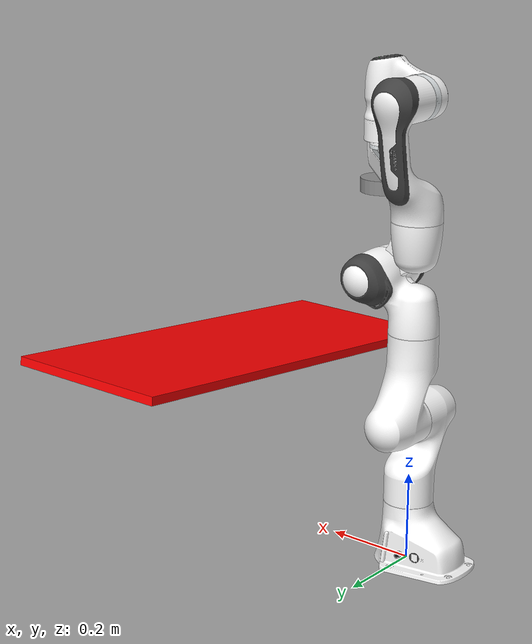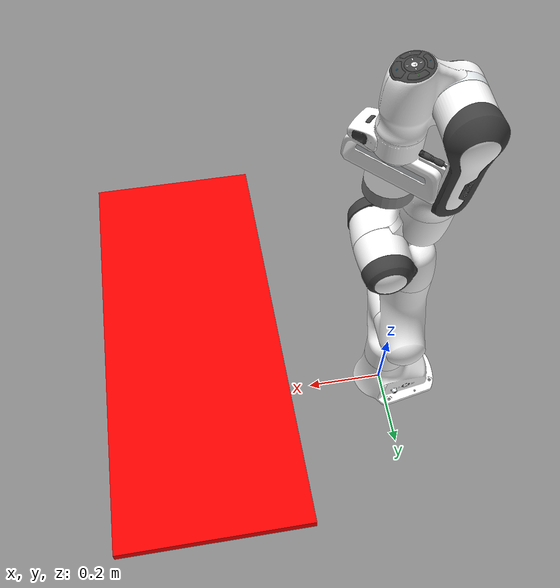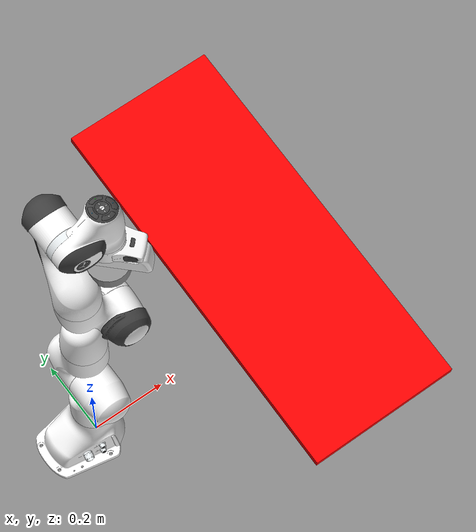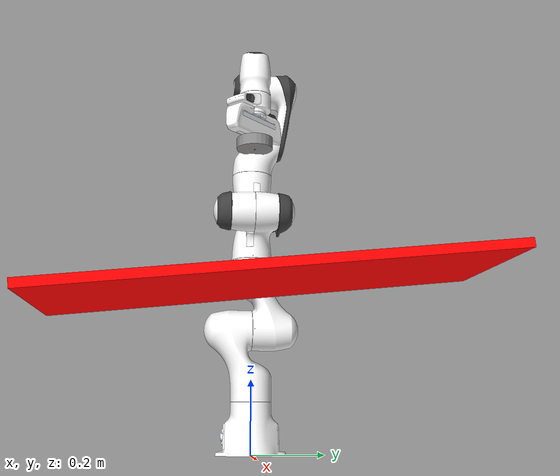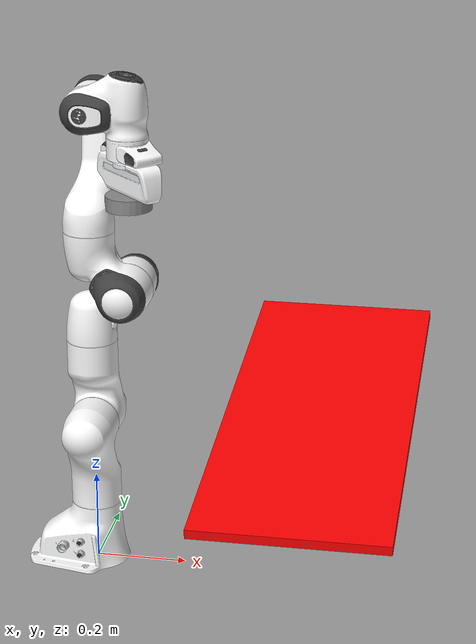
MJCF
<mujoco model="panda_grinder">
  <compiler angle="radian" meshdir="assets" autolimits="true"/>

  <visual>
    <global offwidth="1920" offheight="1080" />
    <map force="0.5"/>
    <scale forcewidth="0.05"/>
  </visual>

  <option integrator="implicit" noslip_iterations="1"/>

  <default>
    <default class="panda">
      <material specular="0.5" shininess="0.25"/>
      <joint armature="0.1" damping="0.1" axis="0 0 1" range="-6.283185 6.283185"/>
      <general dyntype="none" biastype="affine" ctrlrange="-6.283185 6.283185" forcerange="-87 87"/>

      <default class="visual">
        <geom type="mesh" contype="0" conaffinity="0" group="2"/>
      </default>
      <default class="collision">
        <geom type="mesh" group="3"/>
      </default>
    </default>
  </default>

  <asset>
    <material class="panda" name="white" rgba="1 1 1 1"/>
    <material class="panda" name="off_white" rgba="0.901961 0.921569 0.929412 1"/>
    <material class="panda" name="black" rgba="0.25 0.25 0.25 1"/>
    <material class="panda" name="green" rgba="0 1 0 1"/>
    <material class="panda" name="light_blue" rgba="0.039216 0.541176 0.780392 1"/>

    <!-- Collision meshes -->
    <mesh name="link0_c" file="link0.stl"/>
    <mesh name="link1_c" file="link1.stl"/>
    <mesh name="link2_c" file="link2.stl"/>
    <mesh name="link3_c" file="link3.stl"/>
    <mesh name="link4_c" file="link4.stl"/>
    <mesh name="link5_c0" file="link5_collision_0.obj"/>
    <mesh name="link5_c1" file="link5_collision_1.obj"/>
    <mesh name="link5_c2" file="link5_collision_2.obj"/>
    <mesh name="link6_c" file="link6.stl"/>
    <mesh name="link7_c" file="link7.stl"/>
    <mesh name="hand_c" file="hand.stl"/>

    <!-- Visual meshes -->
    <mesh file="link0_0.obj"/>
    <mesh file="link0_1.obj"/>
    <mesh file="link0_2.obj"/>
    <mesh file="link0_3.obj"/>
    <mesh file="link0_4.obj"/>
    <mesh file="link0_5.obj"/>
    <mesh file="link0_7.obj"/>
    <mesh file="link0_8.obj"/>
    <mesh file="link0_9.obj"/>
    <mesh file="link0_10.obj"/>
    <mesh file="link0_11.obj"/>
    <mesh file="link1.obj"/>
    <mesh file="link2.obj"/>
    <mesh file="link3_0.obj"/>
    <mesh file="link3_1.obj"/>
    <mesh file="link3_2.obj"/>
    <mesh file="link3_3.obj"/>
    <mesh file="link4_0.obj"/>
    <mesh file="link4_1.obj"/>
    <mesh file="link4_2.obj"/>
    <mesh file="link4_3.obj"/>
    <mesh file="link5_0.obj"/>
    <mesh file="link5_1.obj"/>
    <mesh file="link5_2.obj"/>
    <mesh file="link6_0.obj"/>
    <mesh file="link6_1.obj"/>
    <mesh file="link6_2.obj"/>
    <mesh file="link6_3.obj"/>
    <mesh file="link6_4.obj"/>
    <mesh file="link6_5.obj"/>
    <mesh file="link6_6.obj"/>
    <mesh file="link6_7.obj"/>
    <mesh file="link6_8.obj"/>
    <mesh file="link6_9.obj"/>
    <mesh file="link6_10.obj"/>
    <mesh file="link6_11.obj"/>
    <mesh file="link6_12.obj"/>
    <mesh file="link6_13.obj"/>
    <mesh file="link6_14.obj"/>
    <mesh file="link6_15.obj"/>
    <mesh file="link6_16.obj"/>
    <mesh file="link7_0.obj"/>
    <mesh file="link7_1.obj"/>
    <mesh file="link7_2.obj"/>
    <mesh file="link7_3.obj"/>35
    <mesh file="link7_4.obj"/>
    <mesh file="link7_5.obj"/>
    <mesh file="link7_6.obj"/>
    <mesh file="link7_7.obj"/>
    <mesh file="hand_0.obj"/>
    <mesh file="hand_1.obj"/>
    <mesh file="hand_2.obj"/>
    <mesh file="hand_3.obj"/>
    <mesh file="hand_4.obj"/>
  </asset>

  <worldbody>
    <light name="top" pos="0 0 2" mode="trackcom"/>
    <!-- A simple collision geometry for testing -->
    <geom name="red_box" type="box" pos="0.5 0.0 .39" axisangle="1 0 0 0.1" size=".2 .5 .01" rgba="1 0 0 1" condim="1"/>

    <body name="panda_link0" childclass="panda">
      <inertial mass="0.629769" pos="-0.041018 -0.00014 0.049974" fullinertia="0.00315 0.00388 0.004285 8.2904e-7 0.00015 8.2299e-6"/>
      <geom mesh="link0_0" material="off_white" class="visual"/>
      <geom mesh="link0_1" material="black" class="visual"/>
      <geom mesh="link0_2" material="off_white" class="visual"/>
      <geom mesh="link0_3" material="black" class="visual"/>
      <geom mesh="link0_4" material="off_white" class="visual"/>
      <geom mesh="link0_5" material="black" class="visual"/>
      <geom mesh="link0_7" material="white" class="visual"/>
      <geom mesh="link0_8" material="white" class="visual"/>
      <geom mesh="link0_9" material="black" class="visual"/>
      <geom mesh="link0_10" material="off_white" class="visual"/>
      <geom mesh="link0_11" material="white" class="visual"/>
      <geom mesh="link0_c" class="collision"/>
      <body name="panda_link1" pos="0 0 0.333">
        <inertial mass="4.970684" pos="0.003875 0.002081 -0.04762" fullinertia="0.70337 0.70661 0.0091170 -0.00013900 0.0067720 0.019169"/>
        <joint name="panda_joint1"/>
        <geom material="white" mesh="link1" class="visual"/>
        <geom mesh="link1_c" class="collision"/>
        <body name="panda_link2" quat="1 -1 0 0">
          <inertial mass="0.646926" pos="-0.003141 -0.02872 0.003495" fullinertia="0.0079620 2.8110e-2 2.5995e-2 -3.925e-3 1.0254e-2 7.04e-4"/>
          <joint name="panda_joint2"/>
          <geom material="white" mesh="link2" class="visual"/>
          <geom mesh="link2_c" class="collision"/>
          <body name="panda_link3" pos="0 -0.316 0" quat="1 1 0 0">
            <joint name="panda_joint3"/>
            <inertial mass="3.228604" pos="2.7518e-2 3.9252e-2 -6.6502e-2" fullinertia="3.7242e-2 3.6155e-2 1.083e-2 -4.761e-3 -1.1396e-2 -1.2805e-2"/>
            <geom mesh="link3_0" material="white" class="visual"/>
            <geom mesh="link3_1" material="white" class="visual"/>
            <geom mesh="link3_2" material="white" class="visual"/>
            <geom mesh="link3_3" material="black" class="visual"/>
            <geom mesh="link3_c" class="collision"/>
            <body name="panda_link4" pos="0.0825 0 0" quat="1 1 0 0">
              <inertial mass="3.587895" pos="-5.317e-2 1.04419e-1 2.7454e-2" fullinertia="2.5853e-2 1.9552e-2 2.8323e-2 7.796e-3 -1.332e-3 8.641e-3"/>
              <joint name="panda_joint4"/>
              <geom mesh="link4_0" material="white" class="visual"/>
              <geom mesh="link4_1" material="white" class="visual"/>
              <geom mesh="link4_2" material="black" class="visual"/>
              <geom mesh="link4_3" material="white" class="visual"/>
              <geom mesh="link4_c" class="collision"/>
              <body name="panda_link5" pos="-0.0825 0.384 0" quat="1 -1 0 0">
                <inertial mass="1.225946" pos="-1.1953e-2 4.1065e-2 -3.8437e-2" fullinertia="3.5549e-2 2.9474e-2 8.627e-3 -2.117e-3 -4.037e-3 2.29e-4"/>
                <joint name="panda_joint5"/>
                <geom mesh="link5_0" material="black" class="visual"/>
                <geom mesh="link5_1" material="white" class="visual"/>
                <geom mesh="link5_2" material="white" class="visual"/>
                <geom mesh="link5_c0" class="collision"/>
                <geom mesh="link5_c1" class="collision"/>
                <geom mesh="link5_c2" class="collision"/>
                <body name="panda_link6" quat="1 1 0 0">
                  <inertial mass="1.666555" pos="6.0149e-2 -1.4117e-2 -1.0517e-2" fullinertia="1.964e-3 4.354e-3 5.433e-3 1.09e-4 -1.158e-3 3.41e-4"/>
                  <joint name="panda_joint6"/>
                  <geom mesh="link6_0" material="off_white" class="visual"/>
                  <geom mesh="link6_1" material="white" class="visual"/>
                  <geom mesh="link6_2" material="black" class="visual"/>
                  <geom mesh="link6_3" material="white" class="visual"/>
                  <geom mesh="link6_4" material="white" class="visual"/>
                  <geom mesh="link6_5" material="white" class="visual"/>
                  <geom mesh="link6_6" material="white" class="visual"/>
                  <geom mesh="link6_7" material="light_blue" class="visual"/>
                  <geom mesh="link6_8" material="light_blue" class="visual"/>
                  <geom mesh="link6_9" material="black" class="visual"/>
                  <geom mesh="link6_10" material="black" class="visual"/>
                  <geom mesh="link6_11" material="white" class="visual"/>
                  <geom mesh="link6_12" material="green" class="visual"/>
                  <geom mesh="link6_13" material="white" class="visual"/>
                  <geom mesh="link6_14" material="black" class="visual"/>
                  <geom mesh="link6_15" material="black" class="visual"/>
                  <geom mesh="link6_16" material="white" class="visual"/>
                  <geom mesh="link6_c" class="collision"/>
                  <body name="panda_link7" pos="0.088 0 0" quat="1 1 0 0">
                    <inertial mass="7.35522e-01" pos="1.0517e-2 -4.252e-3 6.1597e-2" fullinertia="1.2516e-2 1.0027e-2 4.815e-3 -4.28e-4 -1.196e-3 -7.41e-4"/>
                    <joint name="panda_joint7"/>
                    <geom mesh="link7_0" material="white" class="visual"/>
                    <geom mesh="link7_1" material="black" class="visual"/>
                    <geom mesh="link7_2" material="black" class="visual"/>
                    <geom mesh="link7_3" material="black" class="visual"/>
                    <geom mesh="link7_4" material="black" class="visual"/>
                    <geom mesh="link7_5" material="black" class="visual"/>
                    <geom mesh="link7_6" material="black" class="visual"/>
                    <geom mesh="link7_7" material="white" class="visual"/>
                    <geom mesh="link7_c" class="collision"/>
                    <body name="hand" pos="0 0 0.107" quat="0.9238795 0 0 -0.3826834">
                      <camera name="realsense_1" pos="0.1 0.0 0.0"/>
                      <camera name="realsense_2" pos ="-0.1 0.0 0.0"/>
                      <inertial mass="0.73" pos="-0.01 0 0.03" diaginertia="0.001 0.0025 0.0017"/>
                      <site name="tool_center_point" size="0.002 0.002 0.002" rgba="1.0 0.0 0.0 1" pos="0.0 0.0 0.1" axisangle="1.0 0.0 0.0 0.0"/>
                      <geom mesh="hand_0" material="off_white" class="visual"/>
                      <geom mesh="hand_1" material="black" class="visual"/>
                      <geom mesh="hand_2" material="black" class="visual"/>
                      <geom mesh="hand_3" material="white" class="visual"/>
                      <geom mesh="hand_4" material="off_white" class="visual"/>
                      <geom mesh="hand_c" class="collision"/>
                      <geom name="grinder" type="cylinder" pos="0 0 0.085" axisangle="1 0 0 0" size="0.05 0.015 " rgba="0.55 0.55 0.55 1" condim="1"/>
                      <!--geom name="finger" type="capsule" pos="0 0 0.08" axisangle="1 0 0 0" size="0.005 0.015 " rgba="0.55 0.55 0.55 1" solref="0.01 1.1"/-->
                    </body>
                  </body>
                </body>
              </body>
            </body>
          </body>
        </body>
      </body>
    </body>
  </worldbody>

  <actuator>
    <!-- Simple direct torque actuators for the arm joints -->
    <motor class="panda" name="panda_joint1_actuator" ctrllimited="true" ctrlrange="-87.0 87.0" gear="1.0" joint="panda_joint1"/>
    <motor class="panda" name="panda_joint2_actuator" ctrllimited="true" ctrlrange="-87.0 87.0" gear="1.0" joint="panda_joint2"/>
    <motor class="panda" name="panda_joint3_actuator" ctrllimited="true" ctrlrange="-87.0 87.0" gear="1.0" joint="panda_joint3"/>
    <motor class="panda" name="panda_joint4_actuator" ctrllimited="true" ctrlrange="-87.0 87.0" gear="1.0" joint="panda_joint4"/>
    <motor class="panda" name="panda_joint5_actuator" ctrllimited="true" ctrlrange="-12.0 12.0" gear="1.0" joint="panda_joint5"/>
    <motor class="panda" name="panda_joint6_actuator" ctrllimited="true" ctrlrange="-12.0 12.0" gear="1.0" joint="panda_joint6"/>
    <motor class="panda" name="panda_joint7_actuator" ctrllimited="true" ctrlrange="-12.0 12.0" gear="1.0" joint="panda_joint7"/>
  </actuator>

  <keyframe>
    <key name="reset_config" qpos="0.0 -0.3 0.0 -2.2 0.0 2.0 -2.36" />
    <key name="nullspace_config" qpos="0.0 -0.3 0.0 -2.2 0.0 2.0 -2.36" />
  </keyframe>
</mujoco>
